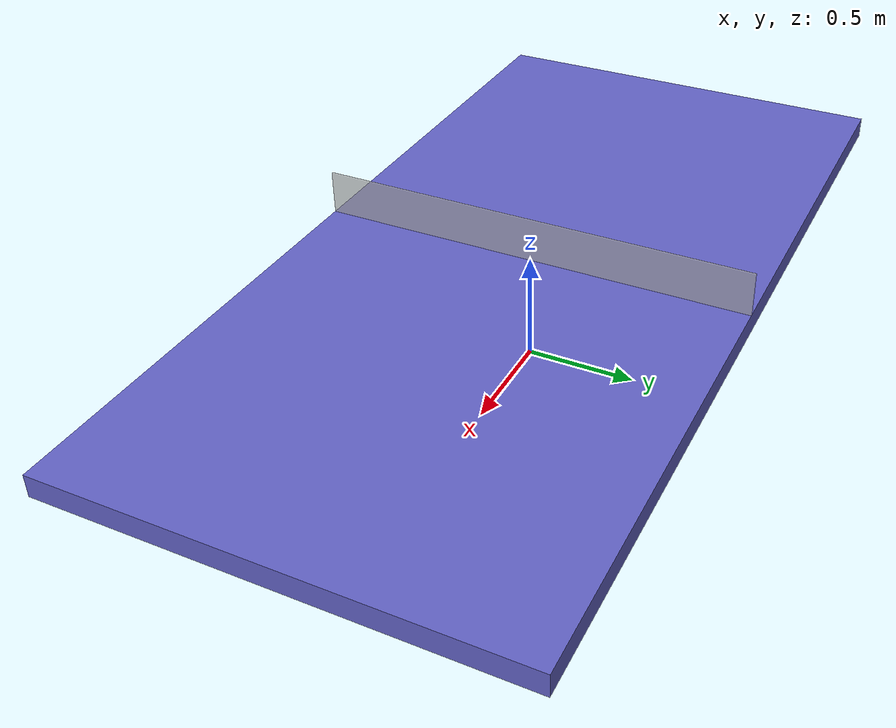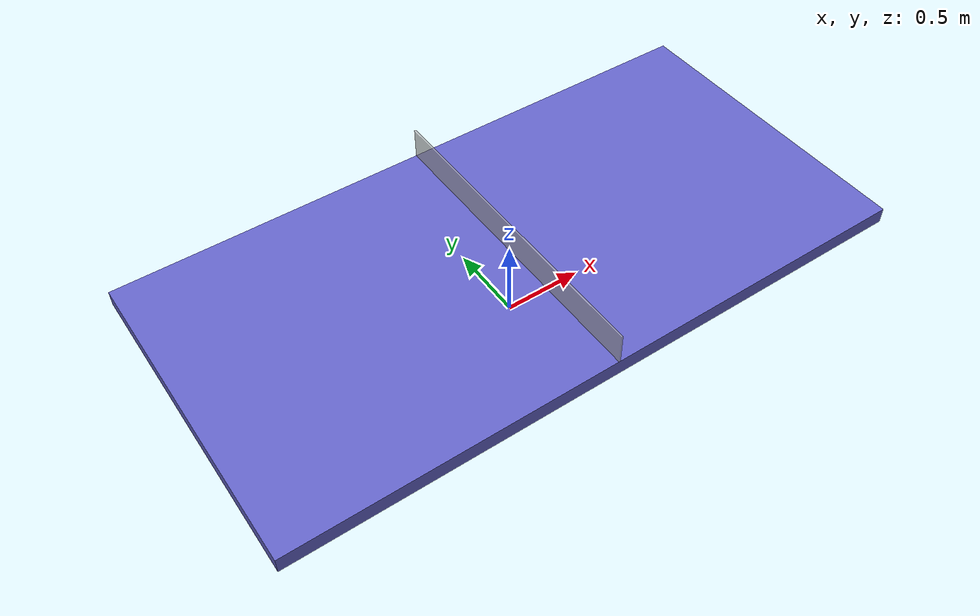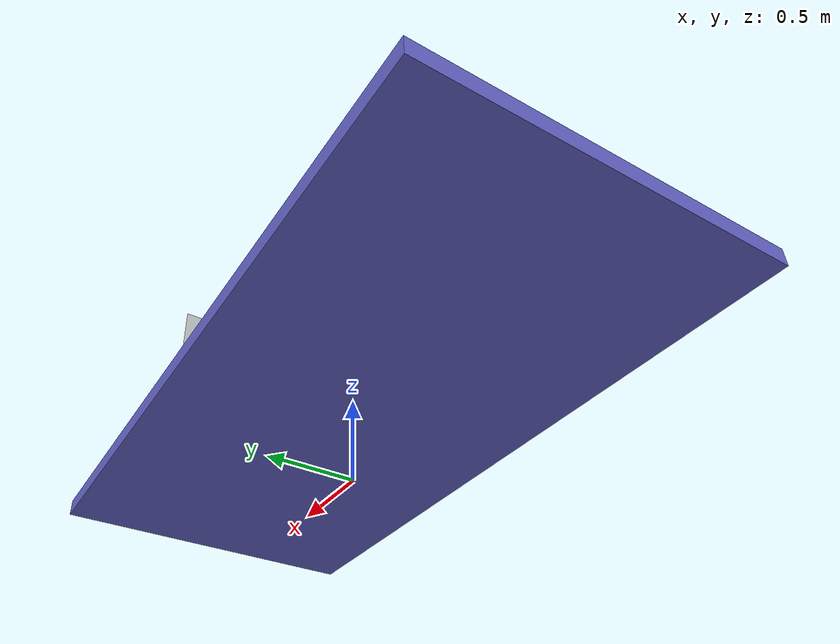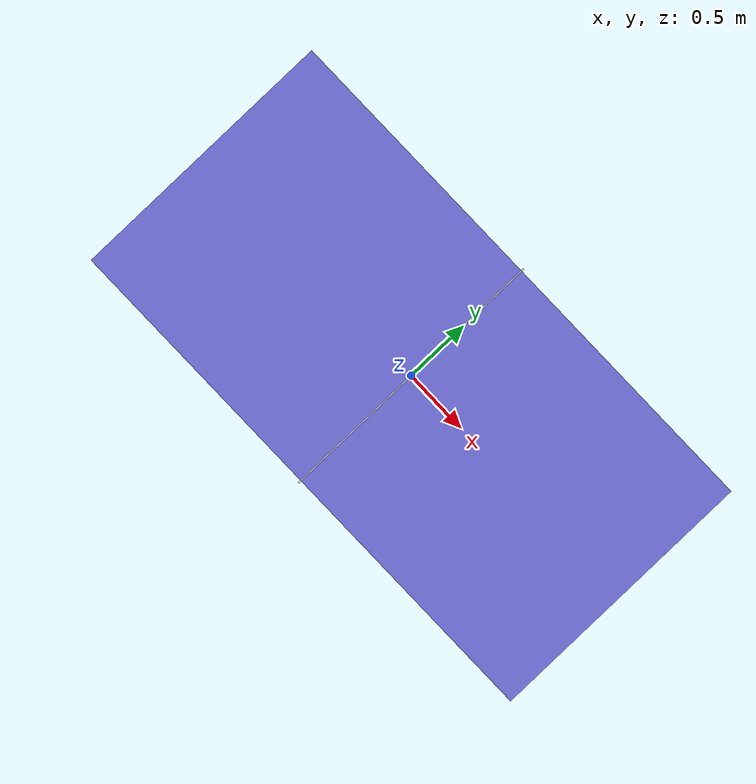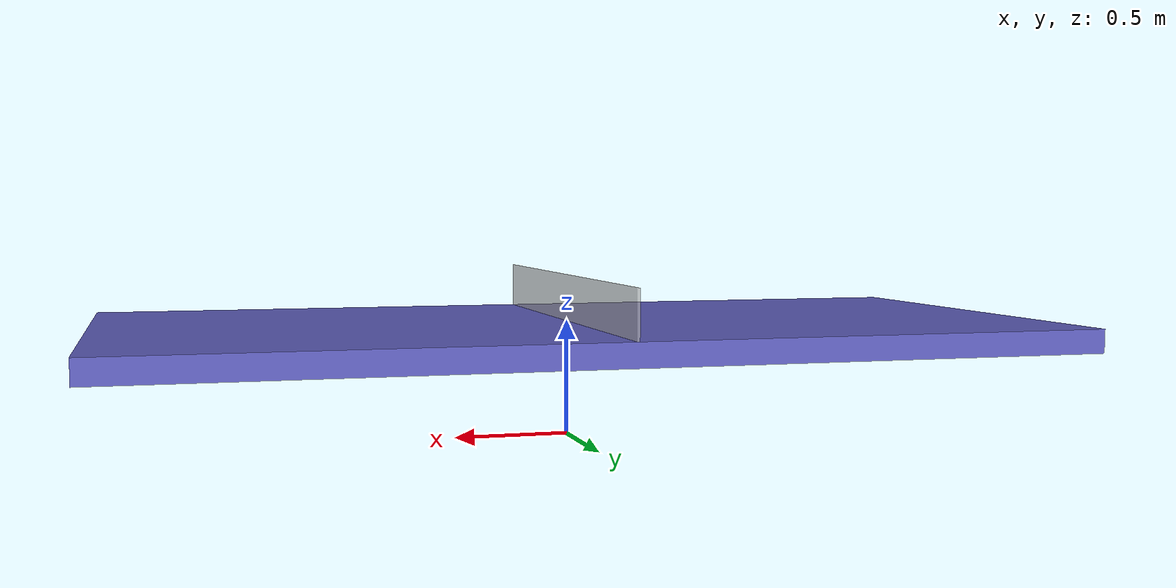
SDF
<?xml version="1.0"?>
<sdf version="1.7">
  <model name="table">
    <pose>0 0 0 0 0 0</pose>
    <link name="table">
      <inertial>
        <mass>74</mass>
      </inertial>

      <visual name="table">
        <pose>0 0 0.45 0 0 0</pose>
        <geometry>
          <box>
            <size>4 2 0.1</size>
          </box>
        </geometry>
        <material>
          <diffuse>0.39 0.39 0.78 1</diffuse>
        </material>
      </visual>

      <visual name="net">
        <pose>0 0 0.6 0 0 0</pose>
        <geometry>
          <box>
            <size>0.01 2 0.2</size>
          </box>
        </geometry>
        <material>
          <diffuse>0.7 0.7 0.7 0.7</diffuse>
        </material>
      </visual>

      <collision name="table_collision">
        <geometry>
          <box>
            <size>4 2 1</size>
          </box>
        </geometry>
        <drake:proximity_properties>
          <drake:hunt_crossley_dissipation>0.1</drake:hunt_crossley_dissipation>
        </drake:proximity_properties>
        <surface>
          <friction>
            <ode>
              <mu>0.5</mu>
              <mu2>0.5</mu2>
            </ode>
          </friction>
          <bounce>
              <restitution_coefficient> 1. </restitution_coefficient>
              <threshold>.0.</threshold>
          </bounce>
        </surface>
      </collision>
    </link>
  </model>
</sdf>
